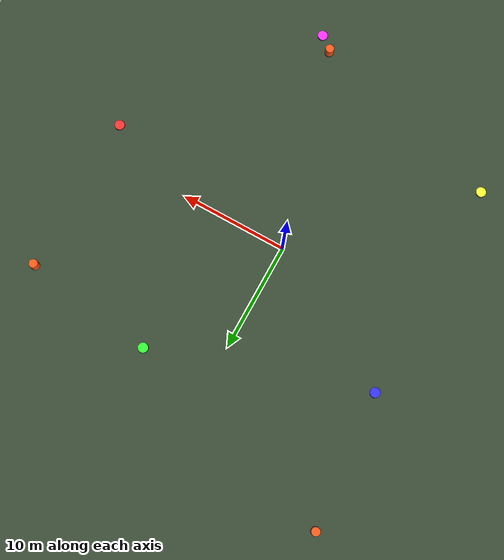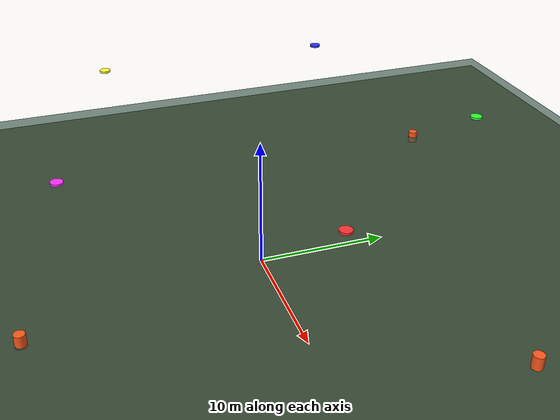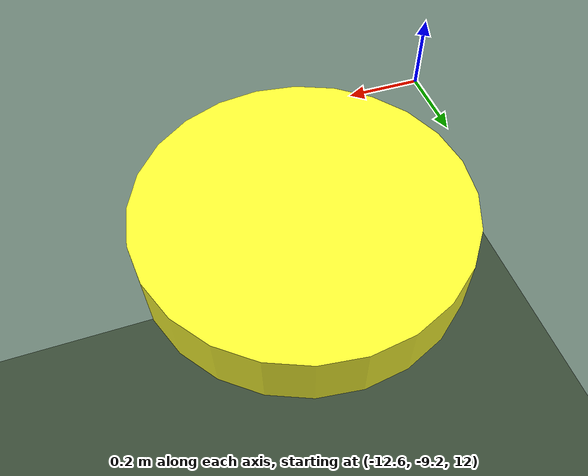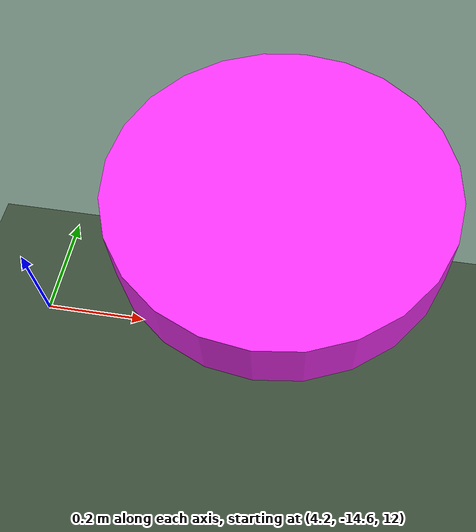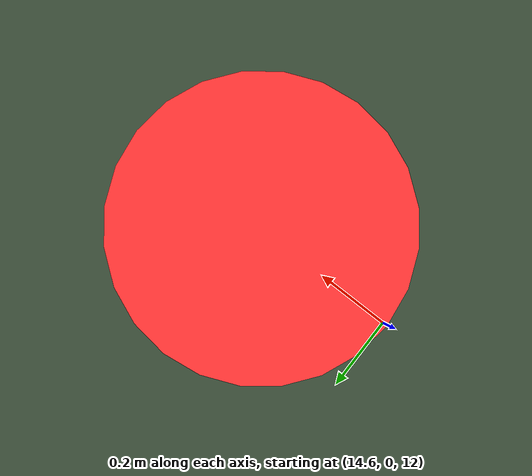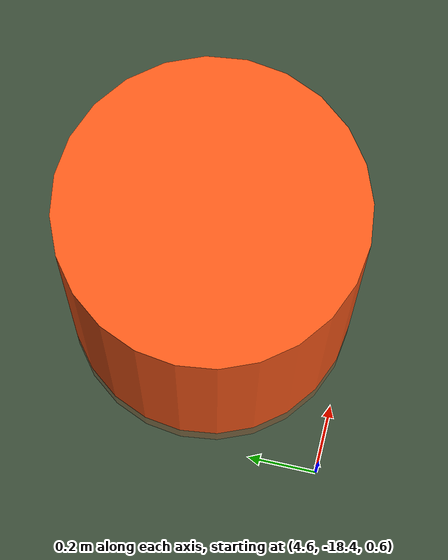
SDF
<sdf version="1.8">
 <world name="flood_village_world">
  <physics name="500hz" type="ignored">
   <max_step_size>0.002</max_step_size>
   <real_time_factor>1.0</real_time_factor>
  </physics>
  <spherical_coordinates>
   <surface_model>EARTH_WGS84</surface_model>
   <world_frame_orientation>ENU</world_frame_orientation>
   <latitude_deg>30.7352</latitude_deg>
   <longitude_deg>79.0669</longitude_deg>
   <elevation>3583.0</elevation>
   <heading_deg>0.0</heading_deg>
  </spherical_coordinates>
  <scene>
   <ambient>0.35 0.38 0.42 1.0</ambient>
   <background>0.52 0.60 0.68 1.0</background>
   <shadows>true</shadows>
   <grid>false</grid>
  </scene>
  <plugin filename="gz-sim-physics-system" name="gz::sim::systems::Physics"/>
  <plugin filename="gz-sim-scene-broadcaster-system" name="gz::sim::systems::SceneBroadcaster"/>
  <plugin filename="gz-sim-user-commands-system" name="gz::sim::systems::UserCommands"/>
  <plugin filename="gz-sim-sensors-system" name="gz::sim::systems::Sensors">
   <render_engine>ogre2</render_engine>
  </plugin>
  <plugin filename="gz-sim-imu-system" name="gz::sim::systems::Imu"/>
  <light type="directional" name="overcast_sun">
   <pose>0 0 200 0 0 0</pose>
   <diffuse>0.65 0.65 0.70 1</diffuse>
   <specular>0.15 0.15 0.18 1</specular>
   <direction>-0.3 0.2 -0.9</direction>
  </light>
  <light type="directional" name="flood_sky_fill">
   <cast_shadows>false</cast_shadows>
   <pose>0 0 50 0 0 0</pose>
   <diffuse>0.20 0.25 0.35 1</diffuse>
   <specular>0.05 0.05 0.08 1</specular>
   <direction>0.3 -0.2 -0.7</direction>
  </light>
  <model name="terrain_base">
   <static>true</static>
   <link name="link">
    <collision name="collision">
     <geometry><plane><normal>0 0 1</normal><size>500 500</size></plane></geometry>
    </collision>
    <visual name="visual">
     <geometry><plane><normal>0 0 1</normal><size>500 500</size></plane></geometry>
     <material><ambient>0.28 0.24 0.18 1</ambient><diffuse>0.38 0.32 0.22 1</diffuse></material>
    </visual>
   </link>
  </model>
  <model name="flood_water_plane">
   <static>true</static>
   <pose>0 0 0.6 0 0 0</pose>
   <link name="link">
    <visual name="visual">
     <geometry><plane><normal>0 0 1</normal><size>400 400</size></plane></geometry>
     <material>
      <ambient>0.15 0.25 0.20 0.65</ambient>
      <diffuse>0.18 0.32 0.25 0.65</diffuse>
      <specular>0.40 0.50 0.45 0.5</specular>
     </material>
     <transparency>0.35</transparency>
    </visual>
   </link>
  </model>
  <model name="survivor_alpha">
   <static>true</static>
   <pose>18.0 12.0 1.8 0 0 0</pose>
   <link name="link">
    <collision name="c">
     <geometry><cylinder><radius>0.4</radius><length>1.0</length></cylinder></geometry>
    </collision>
    <visual name="v">
     <geometry><cylinder><radius>0.4</radius><length>1.0</length></cylinder></geometry>
     <material><ambient>0.95 0.25 0.05 1</ambient><diffuse>1.00 0.35 0.10 1</diffuse></material>
    </visual>
   </link>
  </model>
  <model name="survivor_beta">
   <static>true</static>
   <pose>-14.0 20.0 0.8 0 0 0</pose>
   <link name="link">
    <collision name="c">
     <geometry><cylinder><radius>0.4</radius><length>1.0</length></cylinder></geometry>
    </collision>
    <visual name="v">
     <geometry><cylinder><radius>0.4</radius><length>1.0</length></cylinder></geometry>
     <material><ambient>0.95 0.25 0.05 1</ambient><diffuse>1.00 0.35 0.10 1</diffuse></material>
    </visual>
   </link>
  </model>
  <model name="survivor_gamma">
   <static>true</static>
   <pose>5.0 -18.0 1.2 0 0 0</pose>
   <link name="link">
    <collision name="c">
     <geometry><cylinder><radius>0.4</radius><length>1.0</length></cylinder></geometry>
    </collision>
    <visual name="v">
     <geometry><cylinder><radius>0.4</radius><length>1.0</length></cylinder></geometry>
     <material><ambient>0.95 0.25 0.05 1</ambient><diffuse>1.00 0.35 0.10 1</diffuse></material>
    </visual>
   </link>
  </model>
  <model name="uav_alpha">
   <pose>15.0 0.0 12.0 0 0 0</pose>
   <link name="base_link">
    <inertial>
     <mass>1.5</mass>
     <inertia><ixx>0.03475</ixx><ixy>0</ixy><ixz>0</ixz><iyy>0.03475</iyy><iyz>0</iyz><izz>0.0477</izz></inertia>
    </inertial>
    <collision name="c">
     <geometry><cylinder><radius>0.4</radius><length>0.15</length></cylinder></geometry>
    </collision>
    <visual name="v">
     <geometry><cylinder><radius>0.4</radius><length>0.15</length></cylinder></geometry>
     <material><ambient>0.9 0.1 0.1 1</ambient><diffuse>1.0 0.2 0.2 1</diffuse></material>
    </visual>
    <sensor name="imu_sensor" type="imu">
     <always_on>1</always_on>
     <update_rate>200</update_rate>
     <topic>/uav_alpha/imu</topic>
    </sensor>
    <sensor name="camera_rgb" type="camera">
     <update_rate>30</update_rate>
     <topic>/uav_alpha/camera/image_raw</topic>
     <camera>
      <horizontal_fov>1.5708</horizontal_fov>
      <image><width>1280</width><height>720</height><format>R8G8B8</format></image>
      <clip><near>0.1</near><far>200</far></clip>
     </camera>
    </sensor>
   </link>
   <plugin filename="gz-sim-odometry-publisher-system" name="gz::sim::systems::OdometryPublisher">
    <dimensions>3</dimensions>
   </plugin>
  </model>
  <model name="uav_beta">
   <pose>4.635 14.265 12.0 0 0 0</pose>
   <link name="base_link">
    <inertial><mass>1.5</mass><inertia><ixx>0.03475</ixx><iyy>0.03475</iyy><izz>0.0477</izz></inertia></inertial>
    <collision name="c">
     <geometry><cylinder><radius>0.4</radius><length>0.15</length></cylinder></geometry>
    </collision>
    <visual name="v">
     <geometry><cylinder><radius>0.4</radius><length>0.15</length></cylinder></geometry>
     <material><ambient>0.1 0.9 0.1 1</ambient><diffuse>0.2 1.0 0.2 1</diffuse></material>
    </visual>
    <sensor name="imu_sensor" type="imu">
     <always_on>1</always_on>
     <update_rate>200</update_rate>
     <topic>/uav_beta/imu</topic>
    </sensor>
   </link>
   <plugin filename="gz-sim-odometry-publisher-system" name="gz::sim::systems::OdometryPublisher">
    <dimensions>3</dimensions>
   </plugin>
  </model>
  <model name="uav_gamma">
   <pose>-12.135 8.816 12.0 0 0 0</pose>
   <link name="base_link">
    <inertial><mass>1.5</mass><inertia><ixx>0.03475</ixx><iyy>0.03475</iyy><izz>0.0477</izz></inertia></inertial>
    <collision name="c">
     <geometry><cylinder><radius>0.4</radius><length>0.15</length></cylinder></geometry>
    </collision>
    <visual name="v">
     <geometry><cylinder><radius>0.4</radius><length>0.15</length></cylinder></geometry>
     <material><ambient>0.1 0.1 0.9 1</ambient><diffuse>0.2 0.2 1.0 1</diffuse></material>
    </visual>
    <sensor name="imu_sensor" type="imu">
     <always_on>1</always_on>
     <update_rate>200</update_rate>
     <topic>/uav_gamma/imu</topic>
    </sensor>
   </link>
   <plugin filename="gz-sim-odometry-publisher-system" name="gz::sim::systems::OdometryPublisher">
    <dimensions>3</dimensions>
   </plugin>
  </model>
  <model name="uav_delta">
   <pose>-12.135 -8.816 12.0 0 0 0</pose>
   <link name="base_link">
    <inertial><mass>1.5</mass><inertia><ixx>0.03475</ixx><iyy>0.03475</iyy><izz>0.0477</izz></inertia></inertial>
    <collision name="c">
     <geometry><cylinder><radius>0.4</radius><length>0.15</length></cylinder></geometry>
    </collision>
    <visual name="v">
     <geometry><cylinder><radius>0.4</radius><length>0.15</length></cylinder></geometry>
     <material><ambient>0.9 0.9 0.1 1</ambient><diffuse>1.0 1.0 0.2 1</diffuse></material>
    </visual>
    <sensor name="imu_sensor" type="imu">
     <always_on>1</always_on>
     <update_rate>200</update_rate>
     <topic>/uav_delta/imu</topic>
    </sensor>
   </link>
   <plugin filename="gz-sim-odometry-publisher-system" name="gz::sim::systems::OdometryPublisher">
    <dimensions>3</dimensions>
   </plugin>
  </model>
  <model name="uav_epsilon">
   <pose>4.635 -14.265 12.0 0 0 0</pose>
   <link name="base_link">
    <inertial><mass>1.5</mass><inertia><ixx>0.03475</ixx><iyy>0.03475</iyy><izz>0.0477</izz></inertia></inertial>
    <collision name="c">
     <geometry><cylinder><radius>0.4</radius><length>0.15</length></cylinder></geometry>
    </collision>
    <visual name="v">
     <geometry><cylinder><radius>0.4</radius><length>0.15</length></cylinder></geometry>
     <material><ambient>0.9 0.1 0.9 1</ambient><diffuse>1.0 0.2 1.0 1</diffuse></material>
    </visual>
    <sensor name="imu_sensor" type="imu">
     <always_on>1</always_on>
     <update_rate>200</update_rate>
     <topic>/uav_epsilon/imu</topic>
    </sensor>
   </link>
   <plugin filename="gz-sim-odometry-publisher-system" name="gz::sim::systems::OdometryPublisher">
    <dimensions>3</dimensions>
   </plugin>
  </model>
 </world>
</sdf>
